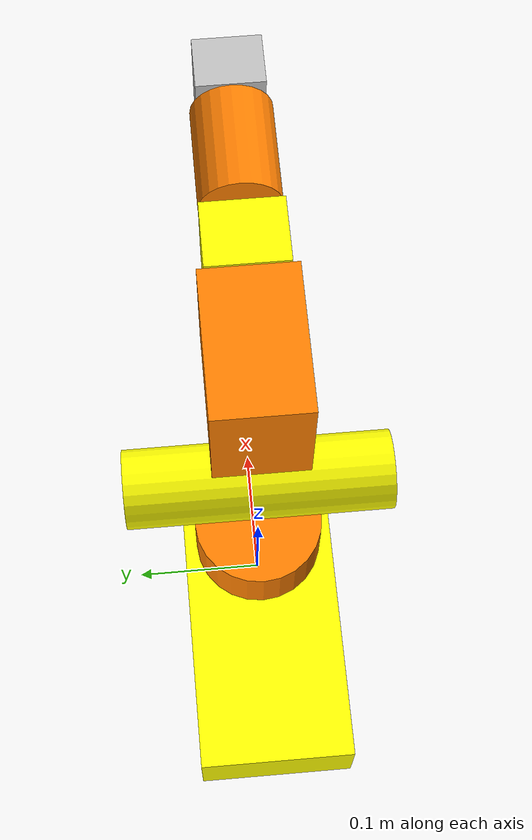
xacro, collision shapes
<?xml version="1.0" encoding="utf-8"?>
<robot name="vw-assign1-2025-parol6-fixed-pkg">

  <link name="world"/>
  <joint name="base_joint" type="fixed">
    <parent link="world"/>
    <child link="base_link"/>
    <origin rpy="0 0 0" xyz="0.0 0.0 0.00"/>
  </joint>

<!--             ROBOT                -->

  <link name="base_link">
    <inertial>
      <origin xyz="-0.0274562034602567 -0.00137265400595656 0.031237920982338" rpy="0 0 0" />
      <mass value="0.812661291810144" />
      <inertia ixx="0.00110740279540382" ixy="4.67463481205112E-05" ixz="8.47873933528831E-06" iyy="0.00106582362830227" iyz="-2.6194130573118E-06" izz="0.00147883396699374" />
    </inertial>
    <visual>
      <origin xyz="0 0 0" rpy="0 0 0" />
      <geometry>
        <mesh filename="package://vw-assign1-2025-parol6-fixed-pkg/meshes/base_link.STL" />
      </geometry>
      <material name="">
        <color rgba="1 1 0 1" />
      </material>
    </visual>
    <collision>
      <origin xyz="-0.06375 0 0.03" rpy="0 0 0" />
      <geometry>
        <box size="0.23 0.12 0.06" />
      </geometry>
    </collision>
  </link>
  <link name="L1">
    <inertial>
      <origin xyz="0.00524529891406311 0.0289722820784871 0.0992791429452917" rpy="0 0 0" />
      <mass value="0.644800830530233" />
      <inertia ixx="0.00109429409029172" ixy="-6.27156874097953E-05" ixz="-5.70466862844753E-05" iyy="0.00056996197700816" iyz="-0.000121686402940313" izz="0.00129487722474286" />
    </inertial>
    <visual>
      <origin xyz="0 0 0" rpy="0 0 0" />
      <geometry>
        <mesh filename="package://vw-assign1-2025-parol6-fixed-pkg/meshes/L1.STL" />
      </geometry>
      <material name="">
        <color rgba="1 0.5 0 1" />
      </material>
    </visual>
    <collision>
      <origin xyz="0 0 0.09" rpy="0 0 0" />
      <geometry>
        <cylinder radius="0.05" length="0.05" />
      </geometry>
    </collision>
  </link>
  <joint name="L1" type="revolute">
    <origin xyz="0 0 0" rpy="0 0 0" />
    <parent link="base_link" />
    <child link="L1" />
    <axis xyz="0 0 1" />
    <limit lower="-1.7" upper="1.7" effort="300" velocity="3" />
  </joint>
  <link name="L2">
    <inertial>
      <origin xyz="-0.0094181617193695 -0.0783879603613605 0.0369429741417731" rpy="0 0 0" />
      <mass value="0.512334779399788" />
      <inertia ixx="0.00123357482646866" ixy="3.63236238096924E-06" ixz="-3.30834557934783E-07" iyy="0.000205462733796053" iyz="4.86441772103282E-07" izz="0.00132225033266162" />
    </inertial>
    <visual>
      <origin xyz="0 0 0" rpy="0 0 0" />
      <geometry>
        <mesh filename="package://vw-assign1-2025-parol6-fixed-pkg/meshes/L2.STL" />
      </geometry>
      <material name="">
        <color rgba="1 1 0 1" />
      </material>
    </visual>
    <collision>
      <origin xyz="-0.015 -0.075 0" rpy="0 0 0" />
      <geometry>
        <cylinder radius="0.03" length="0.2" />
      </geometry>
    </collision>
  </link>
  <joint name="L2" type="revolute">
    <origin xyz="0.0234207210610375 0 0.1105" rpy="-1.5707963267949 0 0" />
    <parent link="L1" />
    <child link="L2" />
    <axis xyz="0 0 1" />
    <limit lower="-0.98" upper="1" effort="300" velocity="3" />
  </joint>
  <link name="L3">
    <inertial>
      <origin xyz="0.0155509885239593 -0.0191127686426613 -0.00153322577917236" rpy="0 0 0" />
      <mass value="0.550970997806044" />
      <inertia ixx="0.00057827573271994" ixy="0.000116505232322314" ixz="-1.19955293256513E-05" iyy="0.000567011676944701" iyz="1.55814255036021E-05" izz="0.000815862001506843" />
    </inertial>
    <visual>
      <origin xyz="0 0 0" rpy="0 0 0" />
      <geometry>
        <mesh filename="package://vw-assign1-2025-parol6-fixed-pkg/meshes/L3.STL" />
      </geometry>
      <material name="">
        <color rgba="1 0.5 0 1" />
      </material>
    </visual>
    <collision>
      <origin xyz="0.020 -0.015 0" rpy="0 0 0" />
      <geometry>
        <box size="0.1 0.11 0.07" />
      </geometry>
    </collision>
  </link>
  <joint name="L3" type="revolute">
    <origin xyz="0 -0.18 0" rpy="3.1416 0 -1.5708" />
    <parent link="L2" />
    <child link="L3" />
    <axis xyz="0 0 -1" />
    <limit lower="-2" upper="1.3" effort="300" velocity="3" />
  </joint>
  <link name="L4">
    <inertial>
      <origin xyz="0.000947028430634433 -0.008978947112462 -0.0924798659827059" rpy="0 0 0" />
      <mass value="0.39346362633915" />
      <inertia ixx="0.000371672516830215" ixy="-1.05560000666389E-05" ixz="-1.56899445418326E-07" iyy="0.000332364226344361" iyz="-6.10397110934672E-05" izz="0.000250606789571909" />
    </inertial>
    <visual>
      <origin xyz="0 0 0" rpy="0 0 0" />
      <geometry>
        <mesh filename="package://vw-assign1-2025-parol6-fixed-pkg/meshes/L4.STL" />
      </geometry>
      <material name="">
        <color rgba="1 1 0 1" />
      </material>
    </visual>
    <collision>
      <origin xyz="0.01 0 -0.097" rpy="0 0 0" />
      <geometry>
        <box size="0.07 0.06 0.050" />
      </geometry>
    </collision>
  </link>
  <joint name="L4" type="revolute">
    <origin xyz="0.0435 0 0" rpy="1.5707963267949 0 3.14159265358979" />
    <parent link="L3" />
    <child link="L4" />
    <axis xyz="0 0 -1" />
    <limit lower="-2" upper="2" effort="300" velocity="3" />
  </joint>
  <link name="L5">
    <inertial>
      <origin xyz="6.7162171684676E-06 -0.00621420980825221 -0.000960871025916146" rpy="0 0 0" />
      <mass value="0.185171777001718" />
      <inertia ixx="0.000109176748460021" ixy="-1.27195013439061E-07" ixz="8.4436049148633E-08" iyy="8.41307588934268E-05" iyz="-4.41596193640049E-07" izz="0.000110629136236229" />
    </inertial>
    <visual>
      <origin xyz="0 0 0" rpy="0 0 0" />
      <geometry>
        <mesh filename="package://vw-assign1-2025-parol6-fixed-pkg/meshes/L5.STL" />
      </geometry>
      <material name="">
        <color rgba="1 0.5 0 1" />
      </material>
    </visual>
    <collision>
      <origin xyz="0 -0.005 0" rpy="1.5707963267949 0 3.14159265358979" />
      <geometry>
        <cylinder radius="0.03" length="0.08" />
      </geometry>
    </collision>
  </link>
  <joint name="L5" type="revolute">
    <origin xyz="0 0 -0.17635" rpy="-1.5708 0 0" />
    <parent link="L4" />
    <child link="L5" />
    <axis xyz="0 0 -1" />
    <limit lower="-2.1" upper="2.1" effort="300" velocity="3" />
  </joint>
  <link name="L6">
    <inertial>
      <origin xyz="0.00632955087228015 -0.000453856352095022 -0.0554441567386594" rpy="0 0 0" />
      <mass value="0.0703261410665101" />
      <inertia ixx="1.40276237518287E-05" ixy="3.15503246005279E-07" ixz="-9.28469598788221E-07" iyy="1.81406721166117E-05" iyz="-9.43630009030796E-07" izz="2.34608103291027E-05" />
    </inertial>
    <visual>
      <origin xyz="0 0 0" rpy="0 0 0" />
      <geometry>
        <mesh filename="package://vw-assign1-2025-parol6-fixed-pkg/meshes/L6.STL" />
      </geometry>
      <material name="">
        <color rgba="0.752941176470588 0.752941176470588 0.752941176470588 1" />
      </material>
    </visual>
    <collision>
      <origin xyz="0.01 0 -0.0558" rpy="0 0 0" />
      <geometry>
        <box size="0.08 0.05 0.04" />
      </geometry>
    </collision>
  </link>
  <joint name="L6" type="continuous">
    <origin xyz="0 0 0" rpy="1.5708 0 0" />
    <parent link="L5" />
    <child link="L6" />
    <axis xyz="0 0 -1" />
    <limit lower="-3.1" upper="3.1" effort="300" velocity="3" />
  </joint>

  <transmission name="TRANS_L1">
    <type>transmission_interface/SimpleTransmission</type>
    <joint name="L1">

      <hardwareInterface>hardware_interface/PositionJointInterface</hardwareInterface>
    </joint>
    <actuator name="ACT_L1">

      <hardwareInterface>hardware_interface/PositionJointInterface</hardwareInterface>
      <mechanicalReduction>1</mechanicalReduction>
    </actuator>
  </transmission>

  <transmission name="TRANS_L2">
    <type>transmission_interface/SimpleTransmission</type>
    <joint name="L2">

      <hardwareInterface>hardware_interface/PositionJointInterface</hardwareInterface>
    </joint>
    <actuator name="ACT_L2">

      <hardwareInterface>hardware_interface/PositionJointInterface</hardwareInterface>
      <mechanicalReduction>1</mechanicalReduction>
    </actuator>
  </transmission>

  <transmission name="TRANS_L3">
    <type>transmission_interface/SimpleTransmission</type>
    <joint name="L3">

      <hardwareInterface>hardware_interface/PositionJointInterface</hardwareInterface>
    </joint>
    <actuator name="ACT_L3">

      <hardwareInterface>hardware_interface/PositionJointInterface</hardwareInterface>
      <mechanicalReduction>1</mechanicalReduction>
    </actuator>
  </transmission>

  <transmission name="TRANS_L4">
    <type>transmission_interface/SimpleTransmission</type>
    <joint name="L4">

      <hardwareInterface>hardware_interface/PositionJointInterface</hardwareInterface>
    </joint>
    <actuator name="ACT_L4">

      <hardwareInterface>hardware_interface/PositionJointInterface</hardwareInterface>
      <mechanicalReduction>1</mechanicalReduction>
    </actuator>
  </transmission>

  <transmission name="TRANS_L5">
    <type>transmission_interface/SimpleTransmission</type>
    <joint name="L5">

      <hardwareInterface>hardware_interface/PositionJointInterface</hardwareInterface>
    </joint>
    <actuator name="ACT_L5">

      <hardwareInterface>hardware_interface/PositionJointInterface</hardwareInterface>
      <mechanicalReduction>1</mechanicalReduction>
    </actuator>
  </transmission>

  <transmission name="TRANS_L6">
    <type>transmission_interface/SimpleTransmission</type>
    <joint name="L6">

      <hardwareInterface>hardware_interface/PositionJointInterface</hardwareInterface>
    </joint>
    <actuator name="ACT_L6">

      <hardwareInterface>hardware_interface/PositionJointInterface</hardwareInterface>
      <mechanicalReduction>1</mechanicalReduction>
    </actuator>
  </transmission>

  <gazebo>
    <plugin name="control" filename="libgazebo_ros_control.so">
      <robotNamespace>/</robotNamespace>
    </plugin>
  </gazebo>

  <gazebo reference="L1">
    <selfCollide>true</selfCollide>
  </gazebo>

  <gazebo reference="L2">
    <selfCollide>true</selfCollide>
  </gazebo>

  <gazebo reference="L3">
    <selfCollide>true</selfCollide>
  </gazebo>

  <gazebo reference="L4">
    <selfCollide>true</selfCollide>
  </gazebo>

  <gazebo reference="L5">
    <selfCollide>true</selfCollide>
  </gazebo>

  <gazebo reference="L6">
    <selfCollide>true</selfCollide>
  </gazebo>
</robot>
